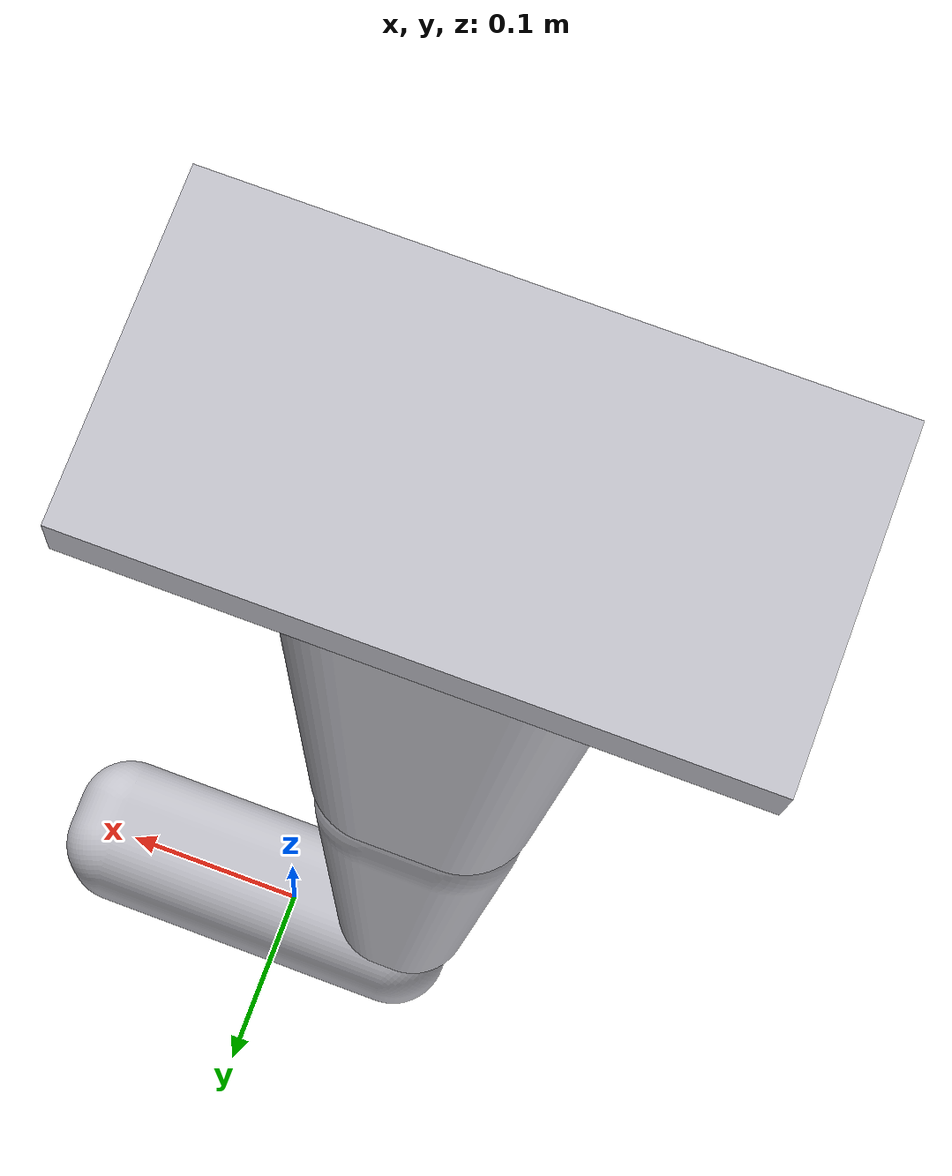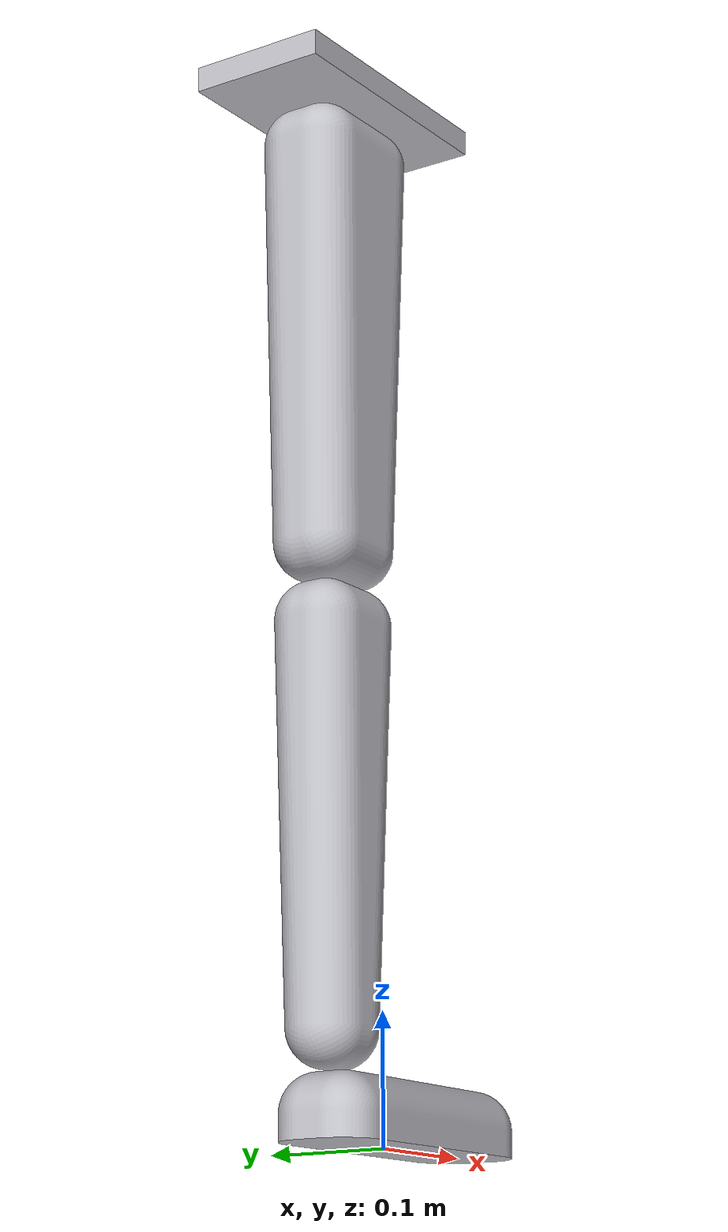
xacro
<?xml version="1.0" ?>
<robot name="gait_analysis" xmlns:xacro="http://www.ros.org/wiki/xacro">

<xacro:include filename="$(find gait_analysis_description)/urdf/materials.xacro" />
<xacro:include filename="$(find gait_analysis_description)/urdf/gait_analysis.ros2control" />
<xacro:include filename="$(find gait_analysis_description)/urdf/gait_analysis.gazebo" />

<link name="base_link">
  <inertial>
    <origin xyz="-0.06478293279614274 -3.6773124150689534e-05 0.7999999999999997" rpy="0 0 0"/>
    <mass value="3.6178191304847207"/>
    <inertia ixx="0.003782" iyy="0.013301" izz="0.016842" ixy="0.0" iyz="0.0" ixz="0.0"/>
  </inertial>
  <visual>
    <origin xyz="0 0 0" rpy="0 0 0"/>
    <geometry>
      <mesh filename="file://$(find gait_analysis_description)/meshes/base_link.stl" scale="0.001 0.001 0.001"/>
    </geometry>
    <material name="silver"/>
  </visual>
  <collision>
    <origin xyz="0 0 0" rpy="0 0 0"/>
    <geometry>
      <mesh filename="file://$(find gait_analysis_description)/meshes/base_link.stl" scale="0.001 0.001 0.001"/>
    </geometry>
  </collision>
</link>

<link name="thigh_1">
  <inertial>
    <origin xyz="-4.313298135200094e-05 0.00012892085790282948 -0.17785038092591976" rpy="0 0 0"/>
    <mass value="21.059202209968067"/>
    <inertia ixx="0.24173" iyy="0.250667" izz="0.026196" ixy="0.0" iyz="0.000198" ixz="-6.7e-05"/>
  </inertial>
  <visual>
    <origin xyz="0.064783 3.7e-05 -0.79" rpy="0 0 0"/>
    <geometry>
      <mesh filename="file://$(find gait_analysis_description)/meshes/thigh_1.stl" scale="0.001 0.001 0.001"/>
    </geometry>
    <material name="silver"/>
  </visual>
  <collision>
    <origin xyz="0.064783 3.7e-05 -0.79" rpy="0 0 0"/>
    <geometry>
      <mesh filename="file://$(find gait_analysis_description)/meshes/thigh_1.stl" scale="0.001 0.001 0.001"/>
    </geometry>
  </collision>
</link>

<link name="shank_1">
  <inertial>
    <origin xyz="-5.006720599932957e-05 -9.872869304342486e-05 -0.16472223341362088" rpy="0 0 0"/>
    <mass value="12.53378316515205"/>
    <inertia ixx="0.124904" iyy="0.12701" izz="0.009536" ixy="-0.0" iyz="-8.7e-05" ixz="-4.4e-05"/>
  </inertial>
  <visual>
    <origin xyz="0.064877 -0.000242 -0.41" rpy="0 0 0"/>
    <geometry>
      <mesh filename="file://$(find gait_analysis_description)/meshes/shank_1.stl" scale="0.001 0.001 0.001"/>
    </geometry>
    <material name="silver"/>
  </visual>
  <collision>
    <origin xyz="0.064877 -0.000242 -0.41" rpy="0 0 0"/>
    <geometry>
      <mesh filename="file://$(find gait_analysis_description)/meshes/shank_1.stl" scale="0.001 0.001 0.001"/>
    </geometry>
  </collision>
</link>

<link name="foot_1">
  <inertial>
    <origin xyz="0.08499984566123078 -2.966504852647214e-07 -0.027357090464364024" rpy="0 0 0"/>
    <mass value="6.120672533177604"/>
    <inertia ixx="0.003875" iyy="0.025171" izz="0.026805" ixy="-0.0" iyz="0.0" ixz="0.0"/>
  </inertial>
  <visual>
    <origin xyz="0.064989 -2.2e-05 -0.05" rpy="0 0 0"/>
    <geometry>
      <mesh filename="file://$(find gait_analysis_description)/meshes/foot_1.stl" scale="0.001 0.001 0.001"/>
    </geometry>
    <material name="silver"/>
  </visual>
  <collision>
    <origin xyz="0.064989 -2.2e-05 -0.05" rpy="0 0 0"/>
    <geometry>
      <mesh filename="file://$(find gait_analysis_description)/meshes/foot_1.stl" scale="0.001 0.001 0.001"/>
    </geometry>
  </collision>
</link>

<joint name="hip_link" type="revolute">
  <origin xyz="-0.064783 -3.7e-05 0.79" rpy="0 0 0"/>
  <parent link="base_link"/>
  <child link="thigh_1"/>
  <axis xyz="0.0 -1.0 0.0"/>
  <limit upper="1.396263" lower="-1.047198" effort="100" velocity="100"/>
</joint>

<joint name="knee_link" type="revolute">
  <origin xyz="-9.4e-05 0.000279 -0.38" rpy="0 0 0"/>
  <parent link="thigh_1"/>
  <child link="shank_1"/>
  <axis xyz="0.0 -1.0 0.0"/>
  <limit upper="1.48353" lower="-1.745329" effort="100" velocity="100"/>
</joint>

<joint name="Revolute 4" type="revolute">
  <origin xyz="-0.000112 -0.00022 -0.36" rpy="0 0 0"/>
  <parent link="shank_1"/>
  <child link="foot_1"/>
  <axis xyz="0.0 -1.0 0.0"/>
  <limit upper="1.745329" lower="-1.745329" effort="100" velocity="100"/>
</joint>

</robot>

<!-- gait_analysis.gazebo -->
<robot name="gait_analysis" xmlns:xacro="http://www.ros.org/wiki/xacro" >

<xacro:property name="body_color" value="Gazebo/Silver" />

<gazebo reference="base_link">
  <material>${body_color}</material>
  <mu1>0.2</mu1>
  <mu2>0.2</mu2>
  <self_collide>true</self_collide>
  <gravity>true</gravity>
</gazebo>

<gazebo reference="thigh_1">
  <material>${body_color}</material>
  <mu1>0.2</mu1>
  <mu2>0.2</mu2>
  <self_collide>true</self_collide>
</gazebo>

<gazebo reference="shank_1">
  <material>${body_color}</material>
  <mu1>0.2</mu1>
  <mu2>0.2</mu2>
  <self_collide>true</self_collide>
</gazebo>

<gazebo reference="foot_1">
  <material>${body_color}</material>
  <mu1>0.2</mu1>
  <mu2>0.2</mu2>
  <self_collide>true</self_collide>
</gazebo>

</robot>
